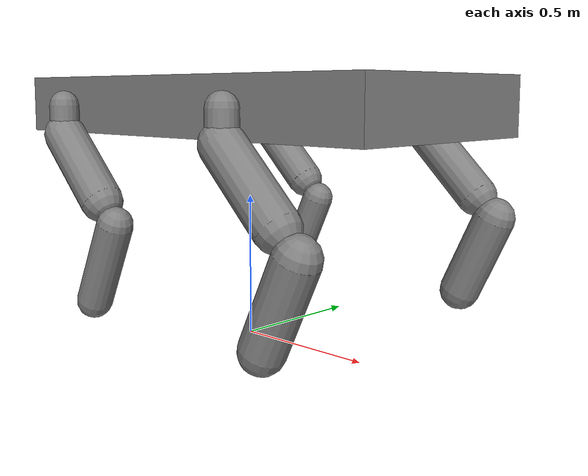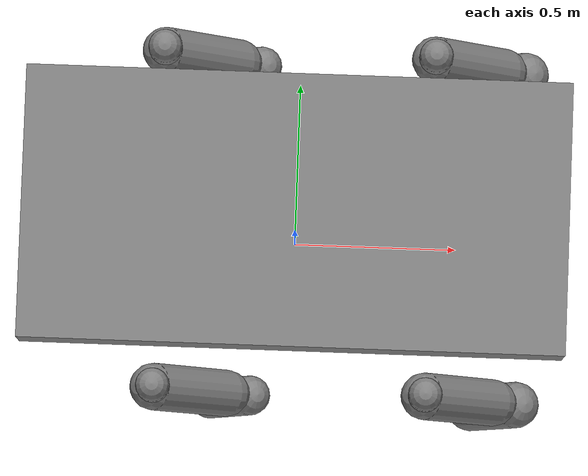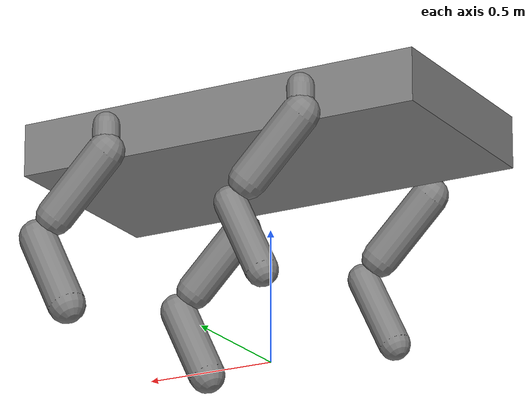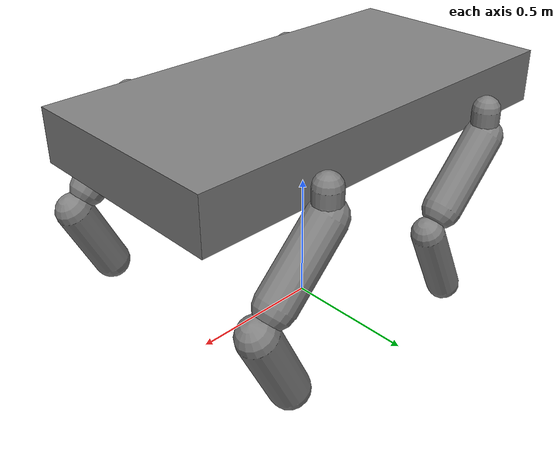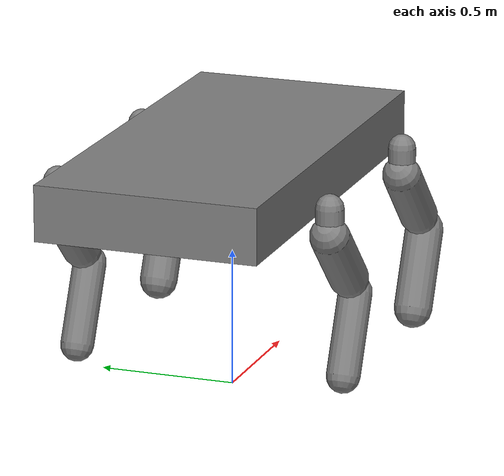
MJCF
<mujoco model="xmlrobot_45">
	<compiler inertiafromgeom="true" />
	<worldbody>
		<body name="root" pos="0 0 0.82" quat="0.707 0 0 -0.707">
			<geom density="5.0" friction="1.5 0.005 0.0001" name="geomroot" pos="-0.02 0 0.07" quat="1.0 0.0 0.0 0.0" size="0.15 0.15 0.02" type="box" />
			<body name="body1" pos="0 0 0" quat="1.0 0.0 0.0 0.0">
				<geom density="5" friction="1.5 0.005 0.0001" name="geombody1" pos="-0.02 0 0" quat="1.0 0.0 0.0 0.0" size="0.4 0.8 0.1" type="box" />
				<body name="limbmount4" pos="0.5 -0.4 0" quat="0.70711 0.0 0.70711 0.0">
					<geom density="1000" friction="1.5 0.005 0.0001" fromto="0 0 0 0.05 0 0" name="geomlimbmount4" quat="1.0 0.0 0.0 0.0" size="0.05" type="capsule" />
					<joint axis="0 1 0" damping="1.0" limited="true" name="joint_joint5" pos="0 0 0" range="-5 5" stiffness="2.0" type="hinge" armature="0.005" />
						<body name="limbmount4_new_new_new_new" pos="0.1 0 0" quat="0.924 0 0 0.383">
							<geom density="1000" friction="1.5 0.005 0.0001" fromto="0 0 0 0.3 0 0" name="geomlimbmount4_new_new_new_new" quat="1.0 0.0 0.0 0.0" size="0.07" type="capsule" />
							<joint axis="0 0 1" damping="1.0" limited="true" name="joint_limbmount4_new_new_new" pos="0 0 0" range="-45 45" stiffness="2.0" type="hinge" armature="0.005" />
								<body name="limbmount4_new_new_new_new_new_new_new_new" pos="0.4 0 0" quat="0.819 0.0 0 -0.574">
									<geom density="1000" friction="1.5 0.005 0.0001" fromto="0 0 0 0.3 0 0" name="geomlimbmount4_new_new_new_new_new_new_new_new" quat="1.0 0.0 0.0 0.0" size="0.06" type="capsule" />
									<joint axis="0 0 1" damping="1.0" limited="true" name="joint_limbmount4_new_new_new_new_new_new_new" pos="0 0 0" range="-45 45" stiffness="2.0" type="hinge" armature="0.005" />
								</body>
						</body>
				</body>
				<body name="limbmount3" pos="-0.5 -0.4 0" quat="0.70711 0.0 0.70711 0.0">
					<geom density="1000" friction="1.5 0.005 0.0001" fromto="0 0 0 0.05 0 0" name="geomlimbmount3" quat="-6.123233995736766e-17 1.0 0.0 0.0" size="0.05" type="capsule" />
					<joint axis="0 1 0" damping="1.0" limited="true" name="joint_joint4" pos="0 0 0" range="-5 5" stiffness="2.0" type="hinge" armature="0.005"/>
						<body name="limblink4" pos="0.1 0 0" quat="0.924 0 0 0.383">
							<geom density="1000" friction="1.5 0.005 0.0001" fromto="0 0 0 0.3 0 0" name="geomlimblink4" quat="1.0 0.0 0.0 0.0" size="0.07" type="capsule" />
							<joint axis="0 0 1" damping="1.0" limited="true" name="joint_joint17" pos="0 0 0" range="-45 45" stiffness="2.0" type="hinge" armature="0.005"/>
								<body name="short_limblink1" pos="0.4 0 0" quat="0.819 0.0 0 -0.574">
									<geom density="1000" friction="1.5 0.005 0.0001" fromto="0 0 0 0.3 0 0" name="geomshort_limblink1" quat="1.0 0.0 0.0 0.0" size="0.06" type="capsule" />
									<joint axis="0 0 1" damping="1.0" limited="true" name="joint_joint20" pos="0 0 0" range="-45 45" stiffness="2.0" type="hinge" armature="0.005"/>
								</body>
						</body>
				</body>
				<body name="limbmount2" pos="-0.5 0.4 0" quat="0.70711 0.0 0.70711 0.0">
					<geom density="1000" friction="1.5 0.005 0.0001" fromto="0 0 0 0.05 0 0" name="geomlimbmount2" quat="-6.123233995736766e-17 1.0 0.0 0.0" size="0.05" type="capsule" />
					<joint axis="0 1 0" damping="1.0" limited="true" name="joint_joint3" pos="0 0 0" range="-5 5" stiffness="2.0" type="hinge" armature="0.005"/>
						<body name="limbmount2_new_new_new_new" pos="0.1 0 0" quat="0.924 0 0 0.383">
							<geom density="1000" friction="1.5 0.005 0.0001" fromto="0 0 0 0.3 0 0" name="geomlimbmount2_new_new_new_new" quat="1.0 0.0 0.0 0.0" size="0.07" type="capsule" />
							<joint axis="0 0 1" damping="1.0" limited="true" name="joint_limbmount2_new_new_new" pos="0 0 0" range="-45 45" stiffness="2.0" type="hinge" armature="0.005"/>
								<body name="limbmount2_new_new_new_new_new_new_new_new" pos="0.4 0 0" quat="0.819 0.0 0 -0.574">
									<geom density="1000" friction="1.5 0.005 0.0001" fromto="0 0 0 0.3 0 0" name="geomlimbmount2_new_new_new_new_new_new_new_new" quat="1.0 0.0 0.0 0.0" size="0.07" type="capsule" />
									<joint axis="0 0 1" damping="1.0" limited="true" name="joint_limbmount2_new_new_new_new_new_new_new" pos="0 0 0" range="-45 45" stiffness="2.0" type="hinge" armature="0.005"/>

								</body>
						</body>
				</body>
				<body name="limbmount1" pos="0.5 0.4 0" quat="0.70711 0.0 0.70711 0.0">
					<geom density="1000" friction="1.5 0.005 0.0001" fromto="0 0 0 0.05 0 0" name="geomlimbmount1" quat="1.0 0.0 0.0 0.0" size="0.05" type="capsule" />
					<joint axis="0 1 0" damping="1.0" limited="true" name="joint_joint2" pos="0 0 0" range="-5 5" stiffness="2.0" type="hinge" armature="0.005"/>
						<body name="limblink1" pos="0.1 0 0" quat="0.924 0 0 0.383">
							<geom density="1000" friction="1.5 0.005 0.0001" fromto="0 0 0 0.3 0 0" name="geomlimblink1" quat="1.0 0.0 0.0 0.0" size="0.07" type="capsule" />
							<joint axis="0 0 1" damping="1.0" limited="true" name="joint_joint10" pos="0 0 0" range="-45 45" stiffness="2.0" type="hinge" armature="0.005"/>
								<body name="limblink7" pos="0.4 0 0" quat="0.819 0.0 0 -0.574">
									<geom density="1000" friction="1.5 0.005 0.0001" fromto="0 0 0 0.3 0 0" name="geomlimblink7" quat="1.0 0.0 0.0 0.0" size="0.07" type="capsule" />
									<joint axis="0 0 1" damping="1.0" limited="true" name="joint_joint22" pos="0 0 0" range="-45 45" stiffness="2.0" type="hinge" armature="0.005"/>

								</body>
						</body>
				</body>
			</body>
		</body>
	</worldbody>
	<actuator>
		<motor ctrllimited="true" ctrlrange="-1 1" gear="45" joint="joint_joint5" />
		<motor ctrllimited="true" ctrlrange="-1 1" gear="45" joint="joint_limbmount4_new_new_new" />
		<motor ctrllimited="true" ctrlrange="-1 1" gear="45" joint="joint_limbmount4_new_new_new_new_new_new_new" />
		<motor ctrllimited="true" ctrlrange="-1 1" gear="45" joint="joint_joint4" />
		<motor ctrllimited="true" ctrlrange="-1 1" gear="45" joint="joint_joint17" />
		<motor ctrllimited="true" ctrlrange="-1 1" gear="45" joint="joint_joint20" />
		<motor ctrllimited="true" ctrlrange="-1 1" gear="45" joint="joint_joint3" />
		<motor ctrllimited="true" ctrlrange="-1 1" gear="45" joint="joint_limbmount2_new_new_new" />
		<motor ctrllimited="true" ctrlrange="-1 1" gear="45" joint="joint_limbmount2_new_new_new_new_new_new_new" />
		<motor ctrllimited="true" ctrlrange="-1 1" gear="45" joint="joint_joint2" />
		<motor ctrllimited="true" ctrlrange="-1 1" gear="45" joint="joint_joint10" />
		<motor ctrllimited="true" ctrlrange="-1 1" gear="45" joint="joint_joint22" />
	</actuator>
</mujoco>
